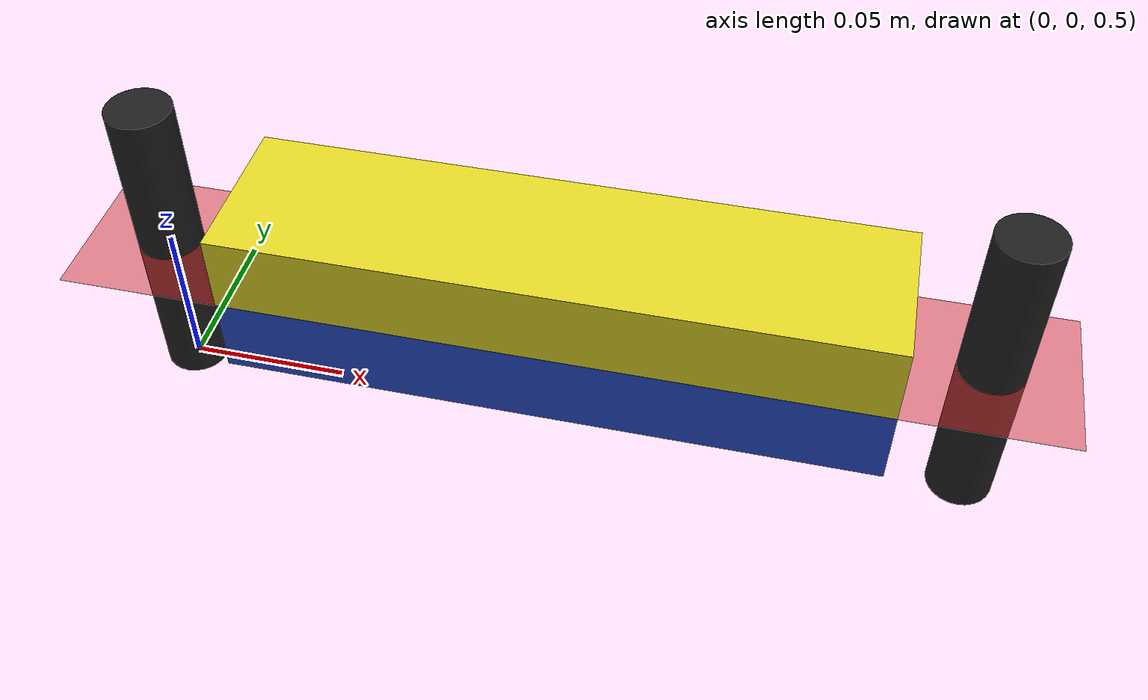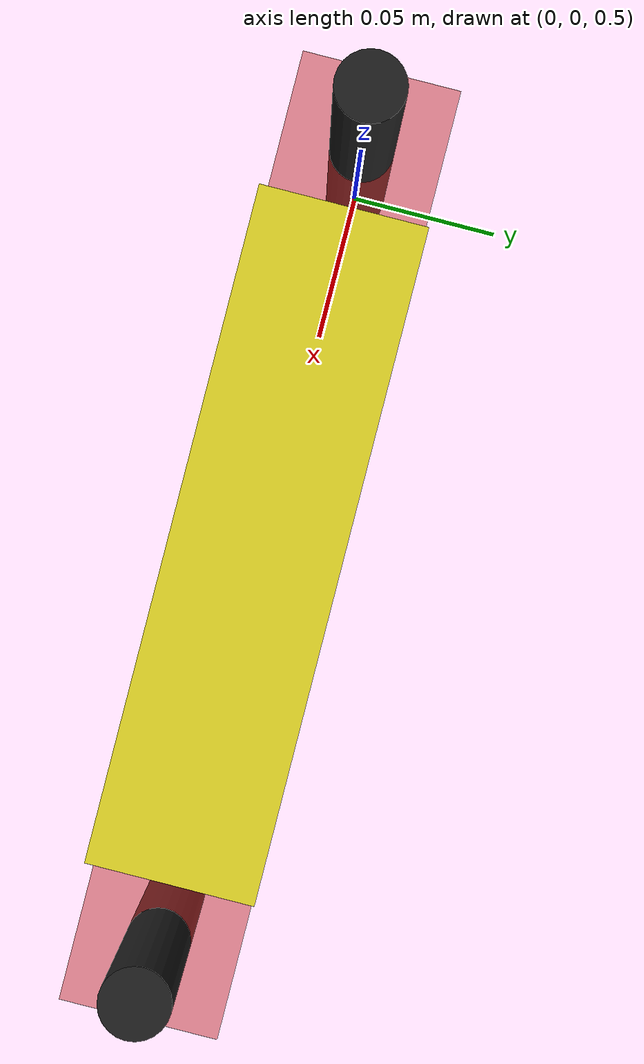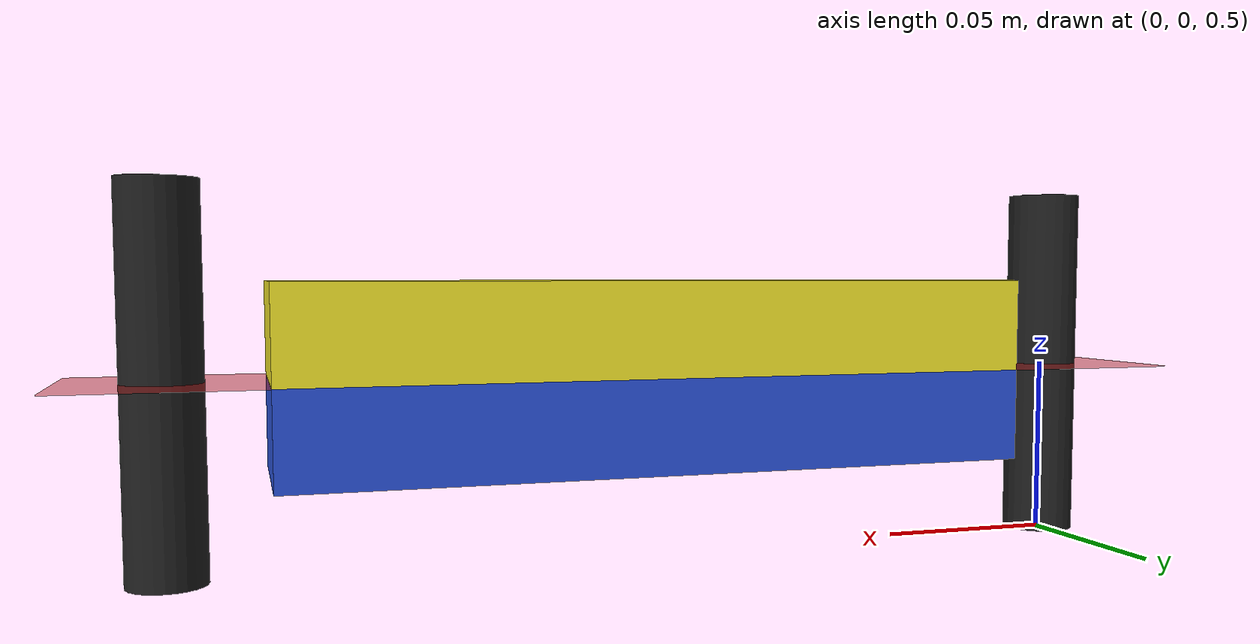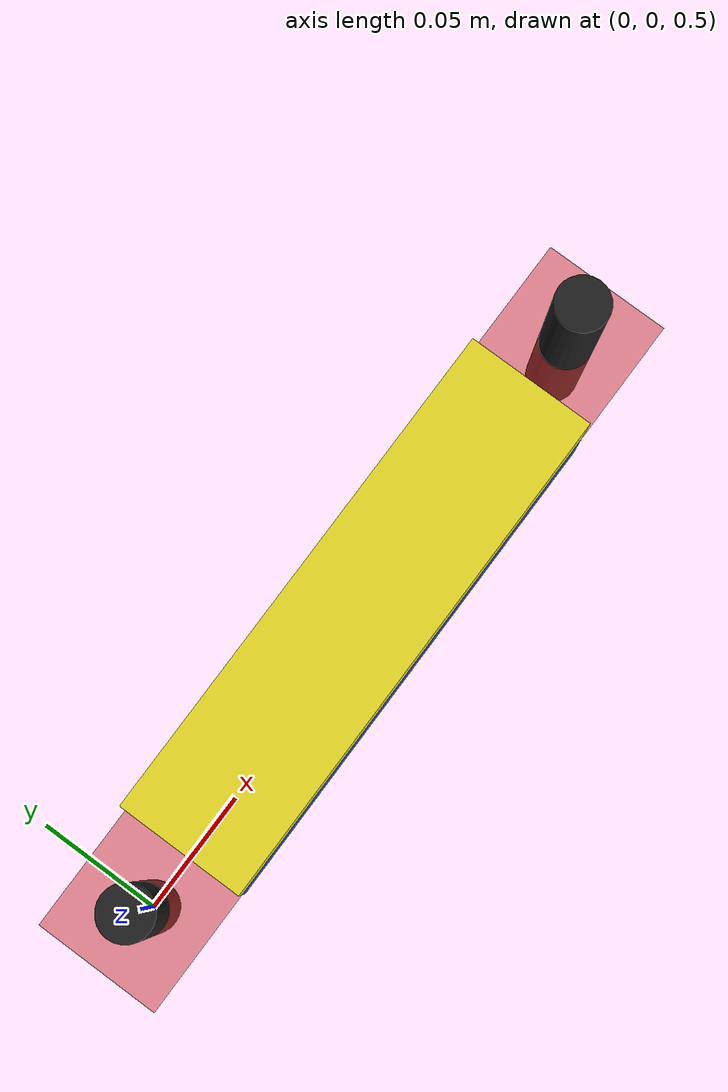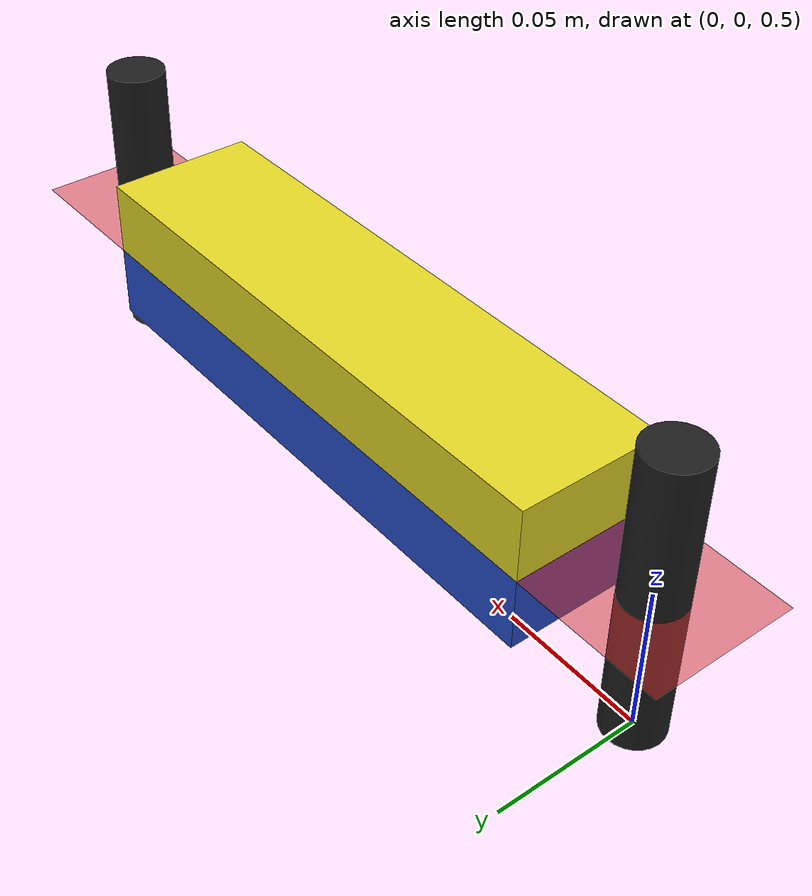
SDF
<sdf version='1.5'>
  <model name='1p_2link'>
    <self_collide>true</self_collide>

    <link name='first_link_handle'>
      <gravity>0</gravity>
      <pose frame=''>0 0 0.55 0 0 0</pose>
      <inertial>
        <mass>0.1</mass>
        <inertia>
          <ixx>0.000077233</ixx>
          <ixy>0</ixy>
          <ixz>0</ixz>
          <iyy>0.000077233</iyy>
          <iyz>0</iyz>
          <izz>0.00000405</izz>
        </inertia>
      </inertial>
      <collision name='first_link_handle_collision'>
        <pose frame=''>0 0 0 0 0 0</pose>
        <geometry>
          <cylinder>
            <length>0.1</length>
            <radius>0.01</radius>
          </cylinder>
        </geometry>
        <surface>
          <contact>
            <collide_bitmask>0x03</collide_bitmask>
          </contact>
        </surface>
      </collision>
      <visual name='first_link_handle_visual'>
        <geometry>
          <cylinder>
            <length>0.1</length>
            <radius>0.01</radius>
          </cylinder>
        </geometry>
        <material>
          <script>
            <name>Gazebo/Black</name>
            <uri>file://media/materials/scripts/gazebo.material</uri>
          </script>
        </material>
      </visual>
    </link>

    <joint name='anchor' type='fixed'>
      <child>first_link_handle</child>
      <parent>world</parent>
      <axis>
        <xyz>0 0 0</xyz>
      </axis>
    </joint>

    <link name='first_link'>
      <gravity>0</gravity>
      <pose>0.025 0 0.55 0 0 0</pose>
      <inertial>
        <pose>0.1 0 0.0125 0 0 0</pose>
        <mass>4.5</mass>
        <inertia>
          <ixx>0.001133</ixx>
          <ixy>0</ixy>
          <ixz>0</ixz>
          <iyy>0.01508</iyy>
          <iyz>0</iyz>
          <izz>0.01575</izz>
        </inertia>
      </inertial>
      <collision name='first_link_collision'>
        <pose frame=''>0.1 0 0.0125 0 0 0</pose>
        <geometry>
          <box>
            <size>0.2 0.05 0.025</size>
          </box>
        </geometry>
        <surface>
          <contact>
            <collide_bitmask>0x01</collide_bitmask>
          </contact>
        </surface>
      </collision>
      <visual name='first_link_visual'>
        <pose frame=''>-0.025 0 0 0 0 0</pose>
        <geometry>
          <box>
            <size>0.05 0.05 0.0002</size>
          </box>
        </geometry>
        <material>
          <script>
            <name>Gazebo/RedTransparentOverlay</name>
            <uri>file://media/materials/scripts/gazebo.material</uri>
          </script>
        </material>
      </visual>
      <visual name='first_link_visual_1'>
        <pose frame=''>0.1 0 0.0125 0 0 0</pose>
        <geometry>
          <box>
            <size>0.2 0.05 0.025</size>
          </box>
        </geometry>
        <material>
          <script>
            <name>Gazebo/Yellow</name>
            <uri>file://media/materials/scripts/gazebo.material</uri>
          </script>
        </material>
      </visual>
    </link>

    <joint name='first_link_handle_ft_joint' type='fixed'>
      <child>first_link</child>
      <parent>first_link_handle</parent>
      <axis>
        <xyz>0 0 0</xyz>
      </axis>
      <sensor name='first_link_ft' type='force_torque'>
        <force_torque>
          <frame>child</frame>
          <measure_direction>parent_to_child</measure_direction>
        </force_torque>
        <always_on>1</always_on>
        <visualize>1</visualize>
        <update_rate>100</update_rate>
        <pose>0 0 0 0 0 0</pose>
        <plugin name='first_link_ft_plugin' filename='libgazebo_yarp_forcetorque.so'>
          <yarpConfigurationFile>model://1p_2link/conf/first_link_ft.ini</yarpConfigurationFile>
        </plugin>
      </sensor>
    </joint>

    <link name='second_link'>
      <gravity>0</gravity>
      <pose>0.025 0 0.55 0 0 0</pose>
      <inertial>
        <pose>0.1 0 -0.0125 0 0 0</pose>
        <mass>2</mass>
        <inertia>
          <ixx>0.0005035</ixx>
          <ixy>0</ixy>
          <ixz>0</ixz>
          <iyy>0.0067035</iyy>
          <iyz>0</iyz>
          <izz>0.007</izz>
        </inertia>
      </inertial>
      <collision name='second_link_collision'>
        <pose frame=''>0.1 0 -0.0125 0 0 0</pose>
        <geometry>
          <box>
            <size>0.2 0.05 0.025</size>
          </box>
        </geometry>
        <surface>
          <contact>
            <collide_bitmask>0x01</collide_bitmask>
          </contact>
        </surface>
      </collision>
      <collision name='second_link_collision_1'>
        <pose frame=''>0.225 0 0 0 0 0</pose>
        <geometry>
          <box>
            <size>0.05 0.05 0.0002</size>
          </box>
        </geometry>
        <surface>
          <contact>
            <collide_bitmask>0x02</collide_bitmask>
          </contact>
        </surface>
      </collision>
      <visual name='second_link_visual'>
        <pose frame=''>0.1 0 -0.0125 0 0 0</pose>
        <geometry>
          <box>
            <size>0.2 0.05 0.025</size>
          </box>
        </geometry>
        <material>
          <script>
            <name>Gazebo/Blue</name>
            <uri>file://media/materials/scripts/gazebo.material</uri>
          </script>
        </material>
      </visual>
        <visual name='second_link_visual_1'>
          <pose frame=''>0.225 0 0 0 0 0</pose>
          <geometry>
            <box>
              <size>0.05 0.05 0.0002</size>
            </box>
          </geometry>
          <material>
            <script>
              <name>Gazebo/RedTransparentOverlay</name>
              <uri>file://media/materials/scripts/gazebo.material</uri>
            </script>
          </material>
        </visual>
    </link>

      <joint name='first_joint' type='prismatic'>
        <child>second_link</child>
        <parent>first_link</parent>
        <axis>
          <xyz>1 0 0</xyz>
          <limit>
            <lower>0</lower>
            <upper>0.2</upper>
            <effort>30</effort>
            <velocity>10</velocity>
          </limit>
        </axis>
      </joint>

      <link name='second_link_handle'>
        <gravity>0</gravity>
        <pose frame=''>0.25 0 0.55 0 0 0</pose>
        <inertial>
          <mass>0.1</mass>
          <inertia>
            <ixx>0.00007723</ixx>
            <ixy>0</ixy>
            <ixz>0</ixz>
            <iyy>0.00007723</iyy>
            <iyz>0</iyz>
            <izz>0.00000405</izz>
          </inertia>
        </inertial>
        <collision name='second_link_handle_collision'>
          <pose frame=''>0 0 0 0 0 0</pose>
          <geometry>
            <cylinder>
              <length>0.1</length>
              <radius>0.01</radius>
            </cylinder>
          </geometry>
          <surface>
            <contact>
              <collide_bitmask>0x03</collide_bitmask>
            </contact>
          </surface>
        </collision>
        <visual name='second_link_handle_visual'>
          <geometry>
            <cylinder>
              <length>0.1</length>
              <radius>0.01</radius>
            </cylinder>
          </geometry>
          <material>
            <script>
              <name>Gazebo/Black</name>
              <uri>file://media/materials/scripts/gazebo.material</uri>
            </script>
          </material>
        </visual>
      </link>

      <joint name='second_link_handle_ft_joint' type='fixed'>
        <child>second_link_handle</child>
        <parent>second_link</parent>
        <axis>
          <xyz>0 0 0</xyz>
        </axis>
        <sensor name='second_link_ft' type='force_torque'>
          <force_torque>
            <frame>child</frame>
            <measure_direction>child_to_parent</measure_direction>
          </force_torque>
          <always_on>1</always_on>
          <update_rate>100</update_rate>
          <pose>0 0 0 0 0 0</pose>
          <plugin name='second_link_ft_plugin' filename='libgazebo_yarp_forcetorque.so'>
            <yarpConfigurationFile>model://1p_2link/conf/second_link_ft.ini</yarpConfigurationFile>
          </plugin>
        </sensor>
      </joint>

      <plugin name="controlboard" filename="libgazebo_yarp_controlboard.so">
        <yarpConfigurationFile>model://1p_2link/conf/gazebo_controlboard.ini</yarpConfigurationFile>
        <initialConfiguration>0.0</initialConfiguration>
      </plugin>

      <plugin name='second_link_handle_multi_ext_wrench' filename='libgazebo_yarp_multiexternalwrench.so'>
        <robotNamefromConfigFile>model://1p_2link/conf/gazebo_1p_2link_robotname.ini</robotNamefromConfigFile>
      </plugin>

      <plugin name='access_link_pose' filename='libgazebo_yarp_accesslinkpose.so'>
        <yarpConfigurationFile>model://1p_2link/conf/gazebo_accesslinkpose.ini</yarpConfigurationFile>
      </plugin>

  </model>
</sdf>
